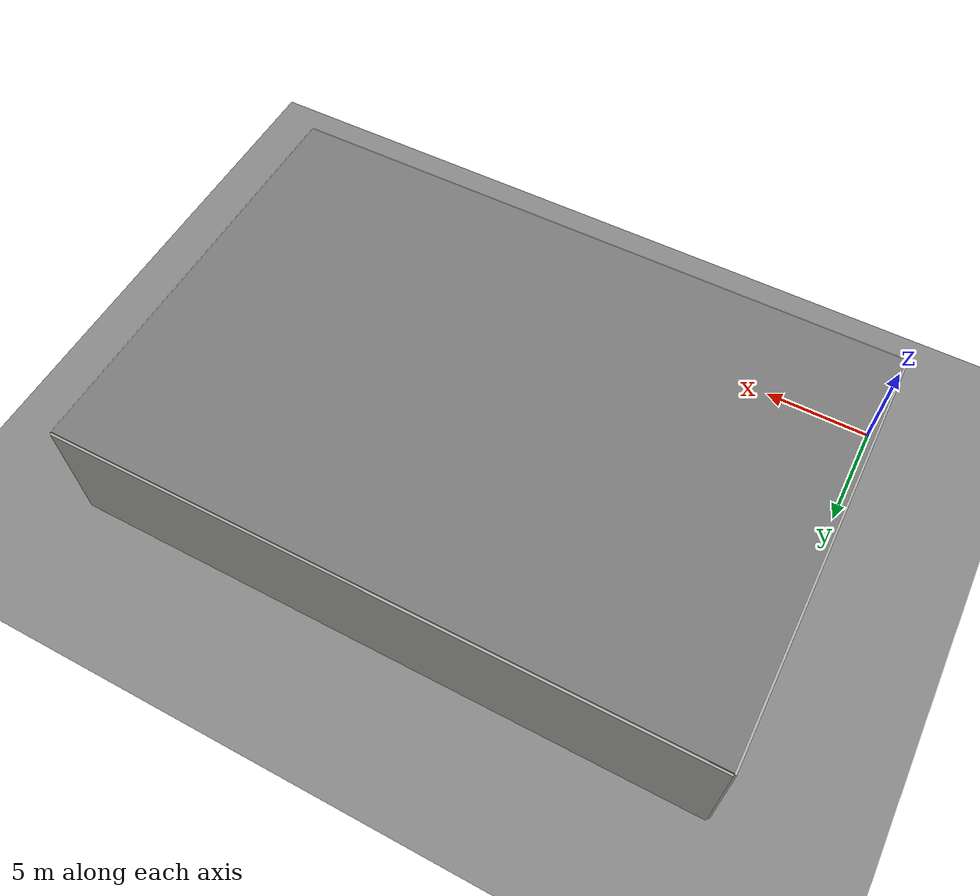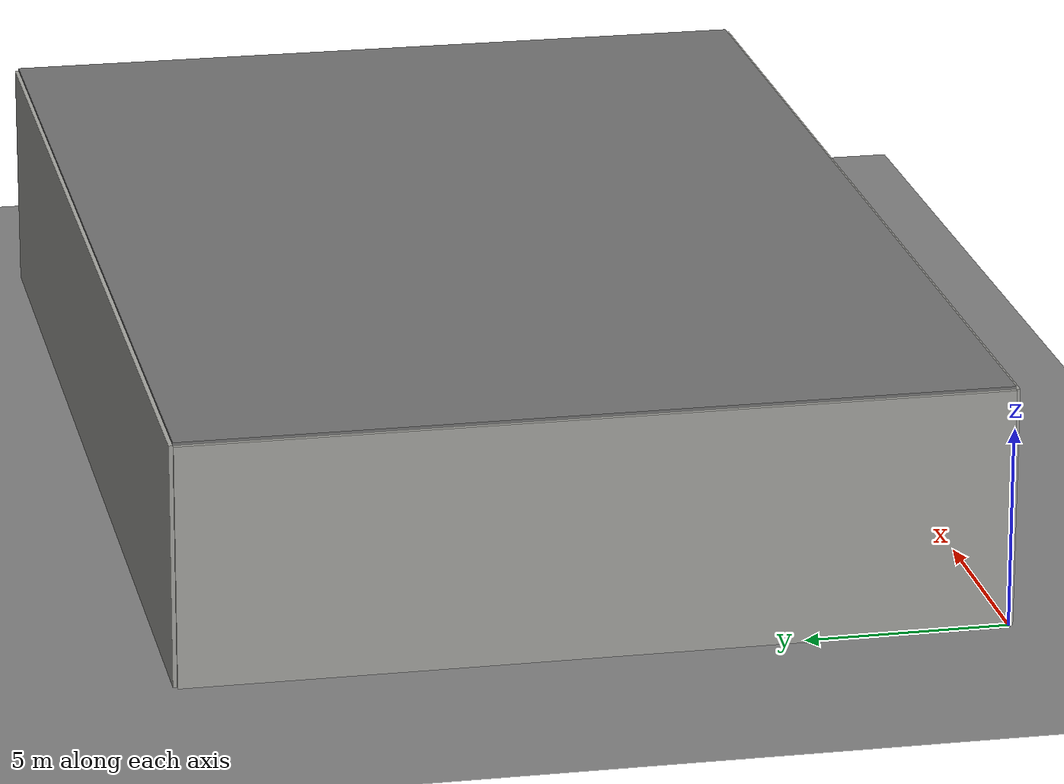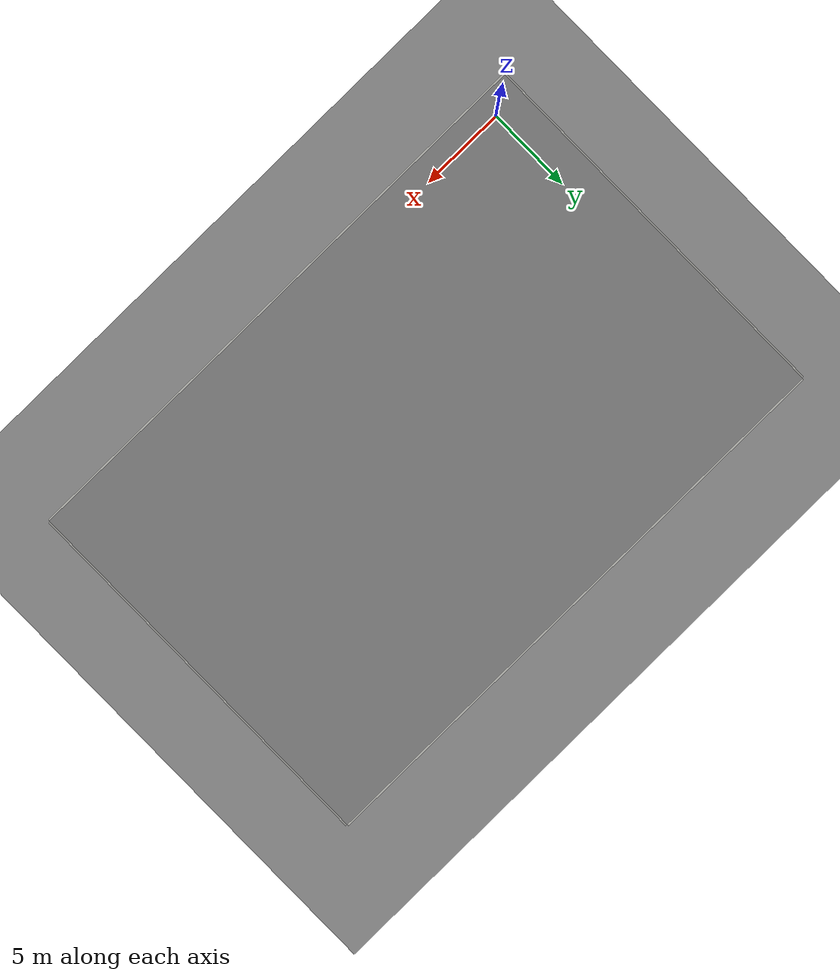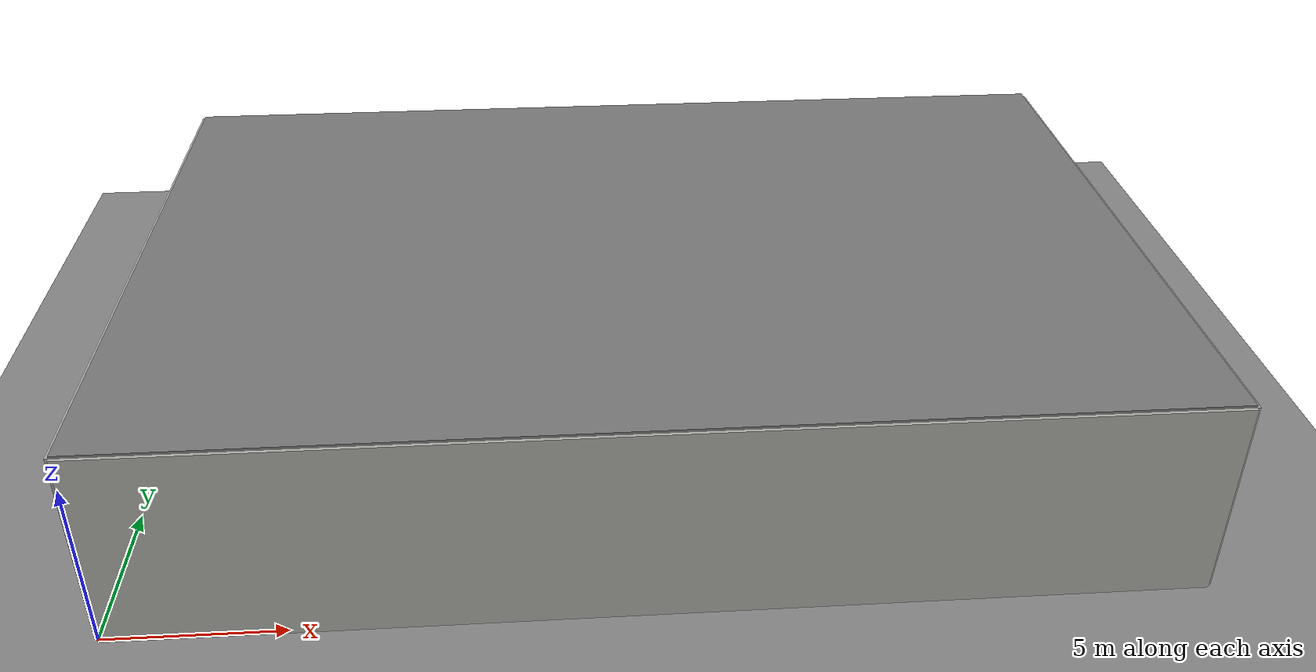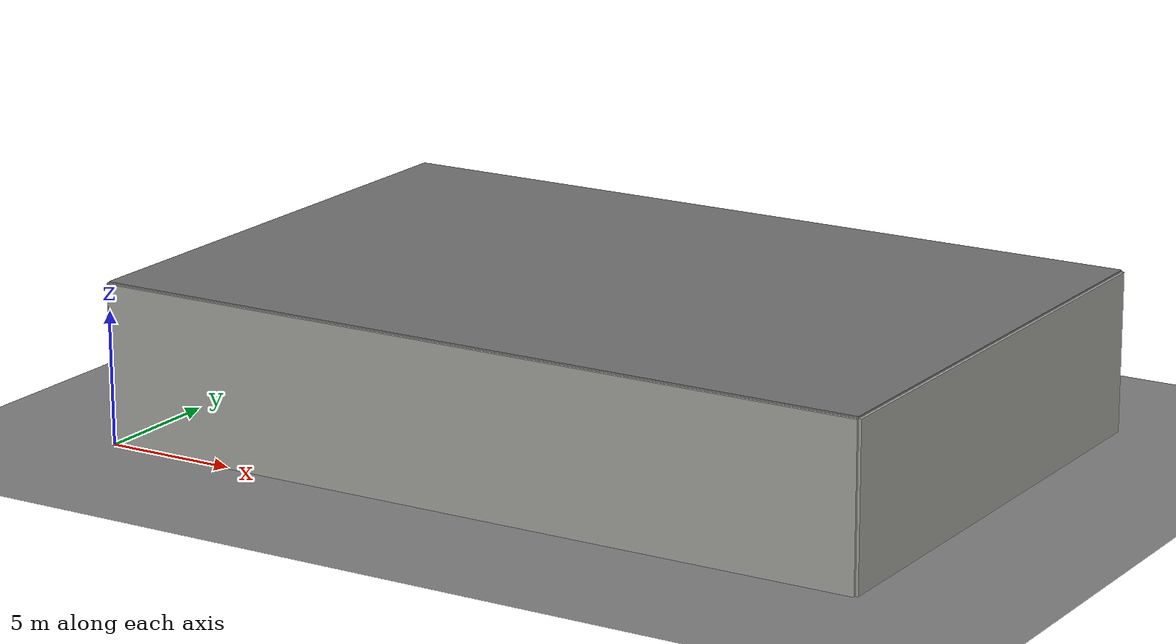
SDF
<sdf version="1.9">
 <world name="warehouse">
  <physics name="1ms" type="ode">
   <max_step_size>0.001</max_step_size>
   <real_time_factor>1.0</real_time_factor>
   <real_time_update_rate>1000</real_time_update_rate>
  </physics>
  <plugin filename="gz-sim-physics-system" name="gz::sim::systems::Physics"/>
  <plugin filename="gz-sim-sensors-system" name="gz::sim::systems::Sensors">
   <render_engine>ogre2</render_engine>
  </plugin>
  <plugin filename="gz-sim-user-commands-system" name="gz::sim::systems::UserCommands"/>
  <plugin filename="gz-sim-scene-broadcaster-system" name="gz::sim::systems::SceneBroadcaster"/>
  <plugin filename="gz-sim-imu-system" name="gz::sim::systems::Imu"/>
  <plugin filename="gz-sim-altimeter-system" name="gz::sim::systems::Altimeter"/>
  <light type="directional" name="warehouse_ambient">
   <pose>15 10 8 0 0 0</pose>
   <diffuse>0.7 0.7 0.7 1</diffuse>
   <specular>0.2 0.2 0.2 1</specular>
   <direction>0 0 -1</direction>
  </light>
  <light type="point" name="bay_light_1">
   <pose>7 5 5.8 0 0 0</pose>
   <diffuse>1 0.95 0.85 1</diffuse>
   <attenuation>
    <range>15</range>
    <constant>0.4</constant>
    <linear>0.05</linear>
    <quadratic>0.01</quadratic>
   </attenuation>
   <cast_shadows>false</cast_shadows>
  </light>
  <light type="point" name="bay_light_2">
   <pose>15 5 5.8 0 0 0</pose>
   <diffuse>1 0.95 0.85 1</diffuse>
   <attenuation>
    <range>15</range>
    <constant>0.4</constant>
    <linear>0.05</linear>
    <quadratic>0.01</quadratic>
   </attenuation>
   <cast_shadows>false</cast_shadows>
  </light>
  <light type="point" name="bay_light_3">
   <pose>23 5 5.8 0 0 0</pose>
   <diffuse>1 0.95 0.85 1</diffuse>
   <attenuation>
    <range>15</range>
    <constant>0.4</constant>
    <linear>0.05</linear>
    <quadratic>0.01</quadratic>
   </attenuation>
   <cast_shadows>false</cast_shadows>
  </light>
  <light type="point" name="bay_light_4">
   <pose>7 15 5.8 0 0 0</pose>
   <diffuse>1 0.95 0.85 1</diffuse>
   <attenuation>
    <range>15</range>
    <constant>0.4</constant>
    <linear>0.05</linear>
    <quadratic>0.01</quadratic>
   </attenuation>
   <cast_shadows>false</cast_shadows>
  </light>
  <light type="point" name="bay_light_5">
   <pose>15 15 5.8 0 0 0</pose>
   <diffuse>1 0.95 0.85 1</diffuse>
   <attenuation>
    <range>15</range>
    <constant>0.4</constant>
    <linear>0.05</linear>
    <quadratic>0.01</quadratic>
   </attenuation>
   <cast_shadows>false</cast_shadows>
  </light>
  <model name="ground">
   <static>true</static>
   <link name="link">
    <collision name="collision">
     <geometry><plane><normal>0 0 1</normal><size>35 25</size></plane></geometry>
    </collision>
    <visual name="visual">
     <geometry><plane><normal>0 0 1</normal><size>35 25</size></plane></geometry>
     <material>
      <ambient>0.45 0.45 0.45 1</ambient>
      <diffuse>0.5 0.5 0.5 1</diffuse>
      <specular>0.15 0.15 0.15 1</specular>
     </material>
    </visual>
   </link>
  </model>
  <model name="wall_n">
   <static>true</static>
   <pose>15 20 3 0 0 0</pose>
   <link name="l">
    <collision name="c"><geometry><box><size>30 0.2 6</size></box></geometry></collision>
    <visual name="v">
     <geometry><box><size>30 0.2 6</size></box></geometry>
     <material><ambient>0.6 0.6 0.58 1</ambient><diffuse>0.65 0.65 0.63 1</diffuse></material>
    </visual>
   </link>
  </model>
  <model name="wall_s">
   <static>true</static>
   <pose>15 0 3 0 0 0</pose>
   <link name="l">
    <collision name="c"><geometry><box><size>30 0.2 6</size></box></geometry></collision>
    <visual name="v">
     <geometry><box><size>30 0.2 6</size></box></geometry>
     <material><ambient>0.6 0.6 0.58 1</ambient><diffuse>0.65 0.65 0.63 1</diffuse></material>
    </visual>
   </link>
  </model>
  <model name="wall_e">
   <static>true</static>
   <pose>30 10 3 0 0 0</pose>
   <link name="l">
    <collision name="c"><geometry><box><size>0.2 20 6</size></box></geometry></collision>
    <visual name="v">
     <geometry><box><size>0.2 20 6</size></box></geometry>
     <material><ambient>0.6 0.6 0.58 1</ambient><diffuse>0.65 0.65 0.63 1</diffuse></material>
    </visual>
   </link>
  </model>
  <model name="wall_w">
   <static>true</static>
   <pose>0 10 3 0 0 0</pose>
   <link name="l">
    <collision name="c"><geometry><box><size>0.2 20 6</size></box></geometry></collision>
    <visual name="v">
     <geometry><box><size>0.2 20 6</size></box></geometry>
     <material><ambient>0.6 0.6 0.58 1</ambient><diffuse>0.65 0.65 0.63 1</diffuse></material>
    </visual>
   </link>
  </model>
  <model name="ceiling">
   <static>true</static>
   <pose>15 10 6 0 0 0</pose>
   <link name="l">
    <collision name="c"><geometry><box><size>30 20 0.15</size></box></geometry></collision>
    <visual name="v">
     <geometry><box><size>30 20 0.15</size></box></geometry>
     <material><ambient>0.4 0.4 0.4 1</ambient><diffuse>0.45 0.45 0.45 1</diffuse></material>
    </visual>
   </link>
  </model>
  <model name="rack_1">
   <static>true</static>
   <pose>5 5 2.0 0 0 0</pose>
   <link name="l">
    <collision name="c"><geometry><box><size>1.0 8.0 4.0</size></box></geometry></collision>
    <visual name="v">
     <geometry><box><size>1.0 8.0 4.0</size></box></geometry>
     <material><ambient>0.35 0.4 0.5 1</ambient><diffuse>0.4 0.45 0.55 1</diffuse></material>
    </visual>
   </link>
  </model>
  <model name="rack_2">
   <static>true</static>
   <pose>10 5 2.0 0 0 0</pose>
   <link name="l">
    <collision name="c"><geometry><box><size>1.0 8.0 4.0</size></box></geometry></collision>
    <visual name="v">
     <geometry><box><size>1.0 8.0 4.0</size></box></geometry>
     <material><ambient>0.35 0.4 0.5 1</ambient><diffuse>0.4 0.45 0.55 1</diffuse></material>
    </visual>
   </link>
  </model>
  <model name="rack_3">
   <static>true</static>
   <pose>15 5 2.0 0 0 0</pose>
   <link name="l">
    <collision name="c"><geometry><box><size>1.0 8.0 4.0</size></box></geometry></collision>
    <visual name="v">
     <geometry><box><size>1.0 8.0 4.0</size></box></geometry>
     <material><ambient>0.35 0.4 0.5 1</ambient><diffuse>0.4 0.45 0.55 1</diffuse></material>
    </visual>
   </link>
  </model>
  <model name="rack_4">
   <static>true</static>
   <pose>5 15 2.0 0 0 0</pose>
   <link name="l">
    <collision name="c"><geometry><box><size>1.0 8.0 4.0</size></box></geometry></collision>
    <visual name="v">
     <geometry><box><size>1.0 8.0 4.0</size></box></geometry>
     <material><ambient>0.35 0.4 0.5 1</ambient><diffuse>0.4 0.45 0.55 1</diffuse></material>
    </visual>
   </link>
  </model>
  <model name="rack_5">
   <static>true</static>
   <pose>10 15 2.0 0 0 0</pose>
   <link name="l">
    <collision name="c"><geometry><box><size>1.0 8.0 4.0</size></box></geometry></collision>
    <visual name="v">
     <geometry><box><size>1.0 8.0 4.0</size></box></geometry>
     <material><ambient>0.35 0.4 0.5 1</ambient><diffuse>0.4 0.45 0.55 1</diffuse></material>
    </visual>
   </link>
  </model>
  <model name="pallet_1">
   <static>true</static>
   <pose>22 4 0.4 0 0 0</pose>
   <link name="l">
    <collision name="c"><geometry><box><size>1.2 1.0 0.8</size></box></geometry></collision>
    <visual name="v">
     <geometry><box><size>1.2 1.0 0.8</size></box></geometry>
     <material><ambient>0.6 0.5 0.3 1</ambient><diffuse>0.7 0.55 0.35 1</diffuse></material>
    </visual>
   </link>
  </model>
  <model name="pallet_2">
   <static>true</static>
   <pose>22 7 0.6 0 0 0</pose>
   <link name="l">
    <collision name="c"><geometry><box><size>1.2 1.0 1.2</size></box></geometry></collision>
    <visual name="v">
     <geometry><box><size>1.2 1.0 1.2</size></box></geometry>
     <material><ambient>0.5 0.4 0.25 1</ambient><diffuse>0.6 0.45 0.3 1</diffuse></material>
    </visual>
   </link>
  </model>
  <model name="box_stack_1">
   <static>true</static>
   <pose>25 10 0.75 0 0 0</pose>
   <link name="l">
    <collision name="c"><geometry><box><size>0.6 0.6 1.5</size></box></geometry></collision>
    <visual name="v">
     <geometry><box><size>0.6 0.6 1.5</size></box></geometry>
     <material><ambient>0.55 0.4 0.2 1</ambient><diffuse>0.65 0.45 0.25 1</diffuse></material>
    </visual>
   </link>
  </model>
  <model name="box_stack_2">
   <static>true</static>
   <pose>25 12 0.5 0 0 0</pose>
   <link name="l">
    <collision name="c"><geometry><box><size>0.8 0.8 1.0</size></box></geometry></collision>
    <visual name="v">
     <geometry><box><size>0.8 0.8 1.0</size></box></geometry>
     <material><ambient>0.55 0.4 0.2 1</ambient><diffuse>0.65 0.45 0.25 1</diffuse></material>
    </visual>
   </link>
  </model>
  <model name="forklift">
   <static>true</static>
   <pose>20 15 0.5 0 0 0.3</pose>
   <link name="l">
    <collision name="c"><geometry><box><size>1.2 2.5 1.0</size></box></geometry></collision>
    <visual name="body">
     <geometry><box><size>1.0 2.0 1.0</size></box></geometry>
     <material><ambient>0.7 0.55 0.0 1</ambient><diffuse>0.8 0.6 0.0 1</diffuse></material>
    </visual>
    <visual name="mast">
     <pose>0 -0.8 0.8 0 0 0</pose>
     <geometry><box><size>0.15 0.1 1.6</size></box></geometry>
     <material><ambient>0.3 0.3 0.3 1</ambient><diffuse>0.4 0.4 0.4 1</diffuse></material>
    </visual>
   </link>
  </model>
 </world>
</sdf>
